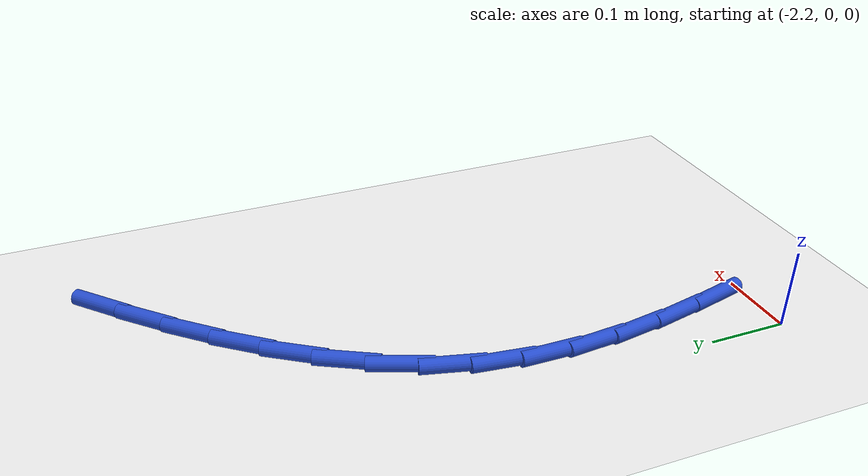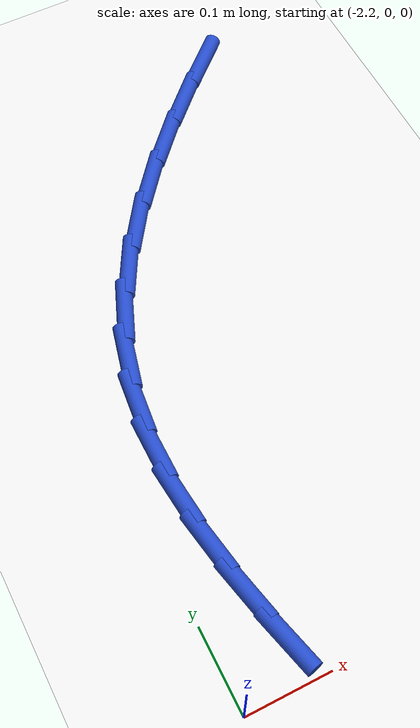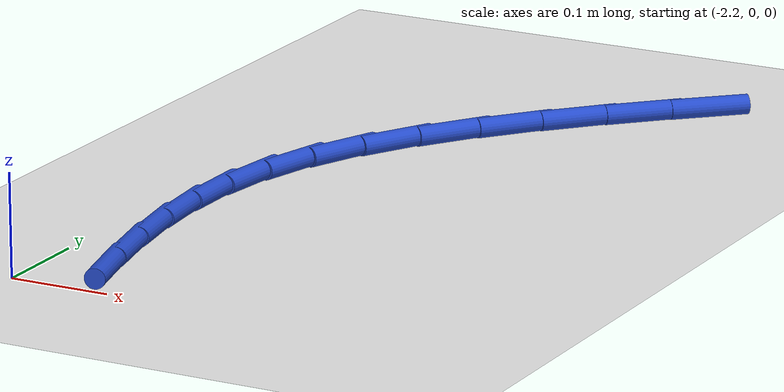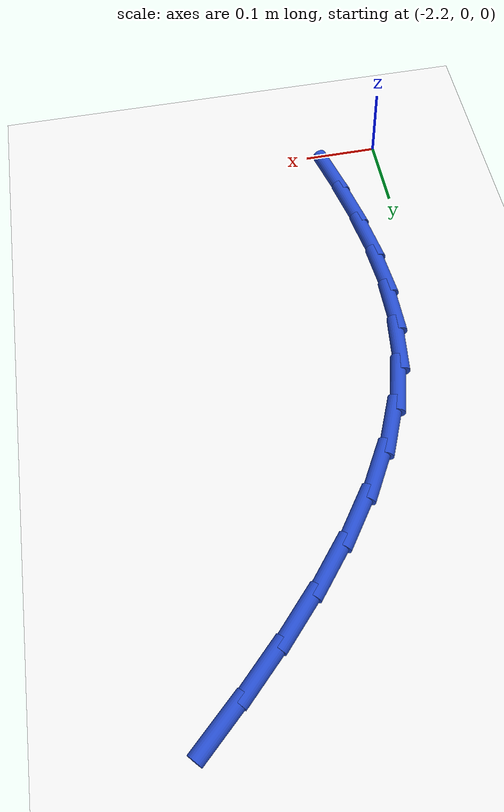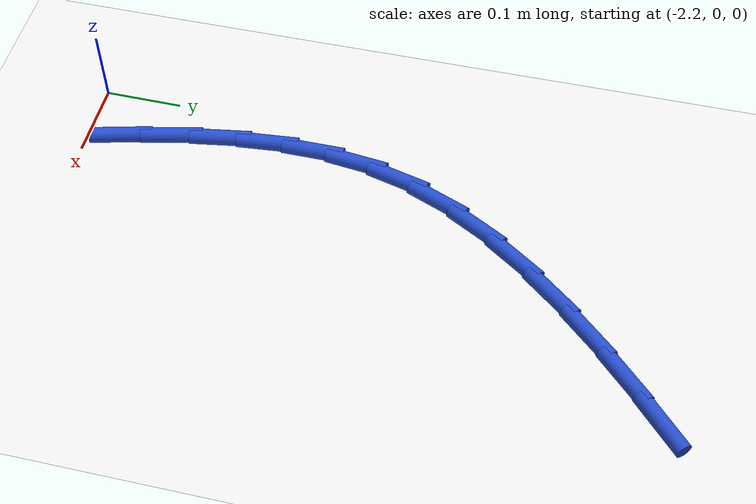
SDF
<sdf version="1.6">
 <world name="default">
  <model name="ground_plane">
   <static>1</static>
   <link name="link">
    <collision name="collision">
     <geometry><plane><normal>0 0 1</normal><size>100 100</size></plane></geometry>
     <surface><friction><ode><mu>100</mu><mu2>50</mu2></ode></friction></surface>
    </collision>
    <visual name="visual">
     <cast_shadows>0</cast_shadows>
     <geometry><plane><normal>0 0 1</normal><size>100 100</size></plane></geometry>
     <material>
      <script><uri>file://media/materials/scripts/gazebo.material</uri><name>Gazebo/WhiteGlow</name></script>
     </material>
    </visual>
   </link>
  </model>
  <model name="line">
   <link name="link_41">
    <pose>-1.8614396741408143 0.7618572428272384 0.01 0 1.57 0.7412029571461456</pose>
    <collision name="collision">
     <geometry><cylinder><radius>0.01</radius><length>0.08</length></cylinder></geometry>
    </collision>
    <visual name="visual">
     <material>
      <script><name>Gazebo/Blue</name><uri>file://media/materials/scripts/gazebo.material</uri></script>
     </material>
     <geometry><cylinder><radius>0.01</radius><length>0.08</length></cylinder></geometry>
    </visual>
   </link>
   <link name="link_42">
    <pose>-1.9113774448975593 0.7161493080408181 0.01 0 1.57 0.7773090422561065</pose>
    <collision name="collision">
     <geometry><cylinder><radius>0.01</radius><length>0.08</length></cylinder></geometry>
    </collision>
    <visual name="visual">
     <material>
      <script><name>Gazebo/Blue</name><uri>file://media/materials/scripts/gazebo.material</uri></script>
     </material>
     <geometry><cylinder><radius>0.01</radius><length>0.08</length></cylinder></geometry>
    </visual>
   </link>
   <link name="link_43">
    <pose>-1.9594779618283358 0.6688207453330384 0.01 0 1.57 0.8252944295974465</pose>
    <collision name="collision">
     <geometry><cylinder><radius>0.01</radius><length>0.08</length></cylinder></geometry>
    </collision>
    <visual name="visual">
     <material>
      <script><name>Gazebo/Blue</name><uri>file://media/materials/scripts/gazebo.material</uri></script>
     </material>
     <geometry><cylinder><radius>0.01</radius><length>0.08</length></cylinder></geometry>
    </visual>
   </link>
   <link name="link_44">
    <pose>-2.00466527541977 0.6198759169068888 0.01 0 1.57 0.887042004319884</pose>
    <collision name="collision">
     <geometry><cylinder><radius>0.01</radius><length>0.08</length></cylinder></geometry>
    </collision>
    <visual name="visual">
     <material>
      <script><name>Gazebo/Blue</name><uri>file://media/materials/scripts/gazebo.material</uri></script>
     </material>
     <geometry><cylinder><radius>0.01</radius><length>0.08</length></cylinder></geometry>
    </visual>
   </link>
   <link name="link_45">
    <pose>-2.0458634361584918 0.5693191849653595 0.01 0 1.57 0.9650011984545982</pose>
    <collision name="collision">
     <geometry><cylinder><radius>0.01</radius><length>0.08</length></cylinder></geometry>
    </collision>
    <visual name="visual">
     <material>
      <script><name>Gazebo/Blue</name><uri>file://media/materials/scripts/gazebo.material</uri></script>
     </material>
     <geometry><cylinder><radius>0.01</radius><length>0.08</length></cylinder></geometry>
    </visual>
   </link>
   <link name="link_46">
    <pose>-2.0819964945311282 0.5171549117114397 0.01 0 1.57 1.061976963978402</pose>
    <collision name="collision">
     <geometry><cylinder><radius>0.01</radius><length>0.08</length></cylinder></geometry>
    </collision>
    <visual name="visual">
     <material>
      <script><name>Gazebo/Blue</name><uri>file://media/materials/scripts/gazebo.material</uri></script>
     </material>
     <geometry><cylinder><radius>0.01</radius><length>0.08</length></cylinder></geometry>
    </visual>
   </link>
   <link name="link_47">
    <pose>-2.1119885010243067 0.4633874593481195 0.01 0 1.57 1.1805425267224539</pose>
    <collision name="collision">
     <geometry><cylinder><radius>0.01</radius><length>0.08</length></cylinder></geometry>
    </collision>
    <visual name="visual">
     <material>
      <script><name>Gazebo/Blue</name><uri>file://media/materials/scripts/gazebo.material</uri></script>
     </material>
     <geometry><cylinder><radius>0.01</radius><length>0.08</length></cylinder></geometry>
    </visual>
   </link>
   <link name="link_48">
    <pose>-2.134763506124656 0.40802119007838844 0.01 0 1.57 1.3193864909059132</pose>
    <collision name="collision">
     <geometry><cylinder><radius>0.01</radius><length>0.08</length></cylinder></geometry>
    </collision>
    <visual name="visual">
     <material>
      <script><name>Gazebo/Blue</name><uri>file://media/materials/scripts/gazebo.material</uri></script>
     </material>
     <geometry><cylinder><radius>0.01</radius><length>0.08</length></cylinder></geometry>
    </visual>
   </link>
   <link name="link_49">
    <pose>-2.1493917105577895 0.3510675842657748 0.01 0 1.57 1.4542393527769684</pose>
    <collision name="collision">
     <geometry><cylinder><radius>0.01</radius><length>0.08</length></cylinder></geometry>
    </collision>
    <visual name="visual">
     <material>
      <script><name>Gazebo/Blue</name><uri>file://media/materials/scripts/gazebo.material</uri></script>
     </material>
     <geometry><cylinder><radius>0.01</radius><length>0.08</length></cylinder></geometry>
    </visual>
   </link>
   <link name="link_50">
    <pose>-2.1562374100988957 0.29260115040416546 0.01 0 1.57 1.5690714131526196</pose>
    <collision name="collision">
     <geometry><cylinder><radius>0.01</radius><length>0.08</length></cylinder></geometry>
    </collision>
    <visual name="visual">
     <material>
      <script><name>Gazebo/Blue</name><uri>file://media/materials/scripts/gazebo.material</uri></script>
     </material>
     <geometry><cylinder><radius>0.01</radius><length>0.08</length></cylinder></geometry>
    </visual>
   </link>
   <link name="link_51">
    <pose>-2.156340683954556 0.23272931061788138 0.01 0 1.57 -1.479612234024091</pose>
    <collision name="collision">
     <geometry><cylinder><radius>0.01</radius><length>0.08</length></cylinder></geometry>
    </collision>
    <visual name="visual">
     <material>
      <script><name>Gazebo/Blue</name><uri>file://media/materials/scripts/gazebo.material</uri></script>
     </material>
     <geometry><cylinder><radius>0.01</radius><length>0.08</length></cylinder></geometry>
    </visual>
   </link>
   <link name="link_52">
    <pose>-2.1507474849482477 0.17155977310226392 0.01 0 1.57 -1.4079817000942039</pose>
    <collision name="collision">
     <geometry><cylinder><radius>0.01</radius><length>0.08</length></cylinder></geometry>
    </collision>
    <visual name="visual">
     <material>
      <script><name>Gazebo/Blue</name><uri>file://media/materials/scripts/gazebo.material</uri></script>
     </material>
     <geometry><cylinder><radius>0.01</radius><length>0.08</length></cylinder></geometry>
    </visual>
   </link>
   <link name="link_53">
    <pose>-2.140503765903448 0.10920024605265446 0.01 0 1.57 -1.3558840735212971</pose>
    <collision name="collision">
     <geometry><cylinder><radius>0.01</radius><length>0.08</length></cylinder></geometry>
    </collision>
    <visual name="visual">
     <material>
      <script><name>Gazebo/Blue</name><uri>file://media/materials/scripts/gazebo.material</uri></script>
     </material>
     <geometry><cylinder><radius>0.01</radius><length>0.08</length></cylinder></geometry>
    </visual>
   </link>
   <link name="link_54">
    <pose>-2.126655479643636 0.045758437664394566 0.01 0 1.57 -1.321398345742256</pose>
    <collision name="collision">
     <geometry><cylinder><radius>0.01</radius><length>0.08</length></cylinder></geometry>
    </collision>
    <visual name="visual">
     <material>
      <script><name>Gazebo/Blue</name><uri>file://media/materials/scripts/gazebo.material</uri></script>
     </material>
     <geometry><cylinder><radius>0.01</radius><length>0.08</length></cylinder></geometry>
    </visual>
   </link>
  </model>
 </world>
</sdf>
